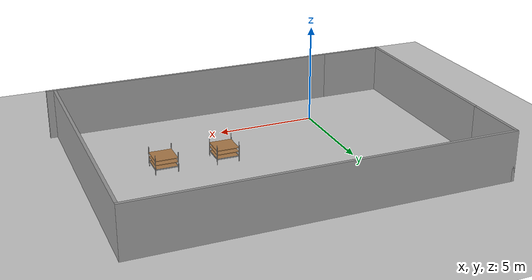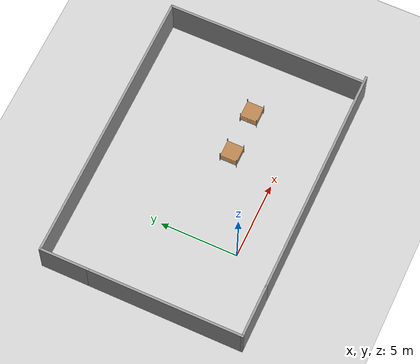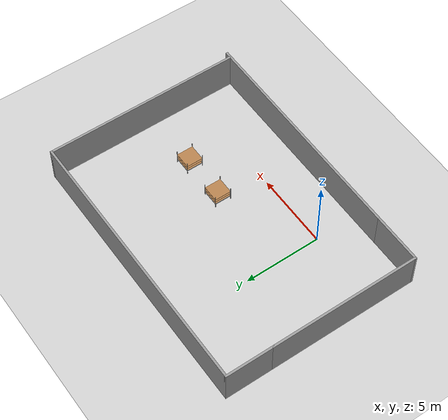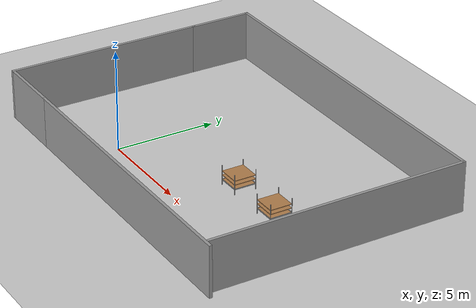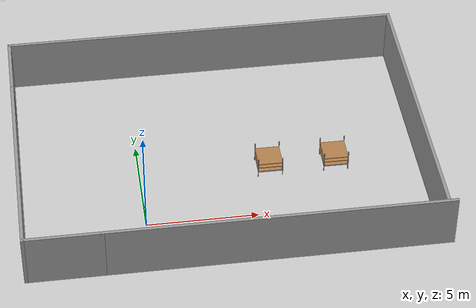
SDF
<sdf version="1.7">
 <world name="default">
  <model name="ground_plane">
   <static>1</static>
   <link name="link">
    <collision name="collision">
     <geometry><plane><normal>0 0 1</normal><size>100 100</size></plane></geometry>
     <surface><friction><ode><mu>100</mu><mu2>50</mu2></ode></friction></surface>
    </collision>
    <visual name="visual">
     <cast_shadows>0</cast_shadows>
     <geometry><plane><normal>0 0 1</normal><size>100 100</size></plane></geometry>
     <material>
      <script><uri>file://media/materials/scripts/gazebo.material</uri><name>Gazebo/Grey</name></script>
     </material>
    </visual>
   </link>
  </model>
  <model name="warehouse_pallet_modified_110_0_clone_3">
   <link name="warehouse_pallet::link">
    <pose>-0.115127 9.2e-05 0 0 -0 1.57</pose>
    <inertial>
     <inertia>
      <ixx>0.0267042</ixx>
      <ixy>0</ixy>
      <ixz>0</ixz>
      <iyy>0.0937875</iyy>
      <iyz>0</iyz>
      <izz>0.120417</izz>
     </inertia>
     <mass>0.5</mass>
    </inertial>
    <visual name="front_right_leg">
     <pose>0.55 -0.55 0.4 0 -0 0</pose>
     <geometry><cylinder><radius>0.02</radius><length>1</length></cylinder></geometry>
     <material>
      <script><uri>file://media/materials/scripts/gazebo.material</uri><name>Gazebo/Grey</name></script>
      <shader type="pixel"><normal_map>__default__</normal_map></shader>
      <ambient>0.3 0.3 0.3 1</ambient>
      <diffuse>0.7 0.7 0.7 1</diffuse>
      <specular>0.01 0.01 0.01 1</specular>
      <emissive>0 0 0 1</emissive>
     </material>
    </visual>
    <visual name="back_left_leg">
     <pose>-0.55 0.55 0.4 0 -0 0</pose>
     <geometry><cylinder><radius>0.02</radius><length>1</length></cylinder></geometry>
     <material>
      <script><uri>file://media/materials/scripts/gazebo.material</uri><name>Gazebo/Grey</name></script>
      <shader type="pixel"><normal_map>__default__</normal_map></shader>
      <ambient>0.3 0.3 0.3 1</ambient>
      <diffuse>0.7 0.7 0.7 1</diffuse>
      <specular>0.01 0.01 0.01 1</specular>
      <emissive>0 0 0 1</emissive>
     </material>
    </visual>
    <visual name="front_left_leg">
     <pose>0.55 0.55 0.4 0 -0 0</pose>
     <geometry><cylinder><radius>0.02</radius><length>1</length></cylinder></geometry>
     <material>
      <script><uri>file://media/materials/scripts/gazebo.material</uri><name>Gazebo/Grey</name></script>
      <shader type="pixel"><normal_map>__default__</normal_map></shader>
      <ambient>0.3 0.3 0.3 1</ambient>
      <diffuse>0.7 0.7 0.7 1</diffuse>
      <specular>0.01 0.01 0.01 1</specular>
      <emissive>0 0 0 1</emissive>
     </material>
    </visual>
    <visual name="visual1">
     <pose>0 0 0.165 0 -0 0</pose>
     <geometry><box><size>1.1 1.1 0.03</size></box></geometry>
     <material>
      <script><uri>file://media/materials/scripts/gazebo.material</uri><name>Gazebo/Wood</name></script>
      <shader type="pixel"><normal_map>__default__</normal_map></shader>
      <ambient>1 1 1 1</ambient>
      <diffuse>1 1 1 1</diffuse>
      <specular>0.2 0.2 0.2 1</specular>
      <emissive>0 0 0 1</emissive>
     </material>
    </visual>
    <visual name="holding2_visual">
     <pose>0 -0.55 0.175 0 -0 0</pose>
     <geometry><box><size>1.1 0.02 0.05</size></box></geometry>
     <material>
      <script><uri>file://media/materials/scripts/gazebo.material</uri><name>Gazebo/Grey</name></script>
      <shader type="pixel"><normal_map>__default__</normal_map></shader>
      <ambient>0.3 0.3 0.3 1</ambient>
      <diffuse>0.7 0.7 0.7 1</diffuse>
      <specular>0.01 0.01 0.01 1</specular>
      <emissive>0 0 0 1</emissive>
     </material>
    </visual>
    <visual name="visual2">
     <pose>0 0 0.4 0 -0 0</pose>
     <geometry><box><size>1.1 1.1 0.03</size></box></geometry>
     <material>
      <script><uri>file://media/materials/scripts/gazebo.material</uri><name>Gazebo/Wood</name></script>
      <shader type="pixel"><normal_map>__default__</normal_map></shader>
      <ambient>1 1 1 1</ambient>
      <diffuse>1 1 1 1</diffuse>
      <specular>0.2 0.2 0.2 1</specular>
      <emissive>0 0 0 1</emissive>
     </material>
    </visual>
    <visual name="holding4_visual">
     <pose>-0.55 0 0.175 0 -0 1.57</pose>
     <geometry><box><size>1.1 0.02 0.05</size></box></geometry>
     <material>
      <script><uri>file://media/materials/scripts/gazebo.material</uri><name>Gazebo/Grey</name></script>
      <shader type="pixel"><normal_map>__default__</normal_map></shader>
      <ambient>0.3 0.3 0.3 1</ambient>
      <diffuse>0.7 0.7 0.7 1</diffuse>
      <specular>0.01 0.01 0.01 1</specular>
      <emissive>0 0 0 1</emissive>
     </material>
    </visual>
    <visual name="holding1_visual">
     <pose>0 0.55 0.175 0 -0 0</pose>
     <geometry><box><size>1.1 0.02 0.05</size></box></geometry>
     <material>
      <script><uri>file://media/materials/scripts/gazebo.material</uri><name>Gazebo/Grey</name></script>
      <shader type="pixel"><normal_map>__default__</normal_map></shader>
      <ambient>0.3 0.3 0.3 1</ambient>
      <diffuse>0.7 0.7 0.7 1</diffuse>
      <specular>0.01 0.01 0.01 1</specular>
      <emissive>0 0 0 1</emissive>
     </material>
    </visual>
    <visual name="back_right_leg">
     <pose>-0.55 -0.55 0.4 0 -0 0</pose>
     <geometry><cylinder><radius>0.02</radius><length>1</length></cylinder></geometry>
     <material>
      <script><uri>file://media/materials/scripts/gazebo.material</uri><name>Gazebo/Grey</name></script>
      <shader type="pixel"><normal_map>__default__</normal_map></shader>
      <ambient>0.3 0.3 0.3 1</ambient>
      <diffuse>0.7 0.7 0.7 1</diffuse>
      <specular>0.01 0.01 0.01 1</specular>
      <emissive>0 0 0 1</emissive>
     </material>
    </visual>
    <visual name="visual3">
     <pose>0 0 0.6 0 -0 0</pose>
     <geometry><box><size>1.1 1.1 0.03</size></box></geometry>
     <material>
      <script><uri>file://media/materials/scripts/gazebo.material</uri><name>Gazebo/Wood</name></script>
      <shader type="pixel"><normal_map>__default__</normal_map></shader>
      <ambient>1 1 1 1</ambient>
      <diffuse>1 1 1 1</diffuse>
      <specular>0.2 0.2 0.2 1</specular>
      <emissive>0 0 0 1</emissive>
     </material>
    </visual>
    <visual name="holding3_visual">
     <pose>0.55 0 0.175 0 -0 1.57</pose>
     <geometry><box><size>1.1 0.02 0.05</size></box></geometry>
     <material>
      <script><uri>file://media/materials/scripts/gazebo.material</uri><name>Gazebo/Grey</name></script>
      <shader type="pixel"><normal_map>__default__</normal_map></shader>
      <ambient>0.3 0.3 0.3 1</ambient>
      <diffuse>0.7 0.7 0.7 1</diffuse>
      <specular>0.01 0.01 0.01 1</specular>
      <emissive>0 0 0 1</emissive>
     </material>
    </visual>
    <collision name="back_right_leg">
     <pose>-0.55 -0.55 0.4 0 -0 0</pose>
     <geometry><cylinder><radius>0.02</radius><length>1</length></cylinder></geometry>
     <surface>
      <friction>
       <ode><mu>1</mu><mu2>1</mu2><fdir1>0 0 0</fdir1><slip1>0</slip1><slip2>0</slip2></ode>
       <torsional>
        <coefficient>1</coefficient>
        <patch_radius>0</patch_radius>
        <surface_radius>0</surface_radius>
        <use_patch_radius>1</use_patch_radius>
        <ode><slip>0</slip></ode>
       </torsional>
      </friction>
      <bounce><restitution_coefficient>0</restitution_coefficient><threshold>1e+06</threshold></bounce>
      <contact>
       <collide_without_contact>0</collide_without_contact>
       <collide_without_contact_bitmask>1</collide_without_contact_bitmask>
       <collide_bitmask>1</collide_bitmask>
       <ode>
        <soft_cfm>0</soft_cfm>
        <soft_erp>0.2</soft_erp>
        <kp>1e+13</kp>
        <kd>1</kd>
        <max_vel>0.01</max_vel>
        <min_depth>0</min_depth>
       </ode>
       <bullet>
        <split_impulse>1</split_impulse>
        <split_impulse_penetration_threshold>-0.01</split_impulse_penetration_threshold>
        <soft_cfm>0</soft_cfm>
        <soft_erp>0.2</soft_erp>
        <kp>1e+13</kp>
        <kd>1</kd>
       </bullet>
      </contact>
     </surface>
    </collision>
    <collision name="holding2_collision">
     <pose>0 -0.55 0.175 0 -0 0</pose>
     <geometry><box><size>1.1 0.02 0.05</size></box></geometry>
     <surface>
      <friction>
       <ode><mu>1e+09</mu><mu2>1e+09</mu2><fdir1>0 0 0</fdir1><slip1>0</slip1><slip2>0</slip2></ode>
       <torsional>
        <coefficient>1</coefficient>
        <patch_radius>0</patch_radius>
        <surface_radius>0</surface_radius>
        <use_patch_radius>1</use_patch_radius>
        <ode><slip>0</slip></ode>
       </torsional>
      </friction>
      <bounce><restitution_coefficient>0</restitution_coefficient><threshold>1e+06</threshold></bounce>
      <contact>
       <collide_without_contact>0</collide_without_contact>
       <collide_without_contact_bitmask>1</collide_without_contact_bitmask>
       <collide_bitmask>1</collide_bitmask>
       <ode>
        <soft_cfm>0</soft_cfm>
        <soft_erp>0.2</soft_erp>
        <kp>1e+13</kp>
        <kd>1</kd>
        <max_vel>0.01</max_vel>
        <min_depth>0</min_depth>
       </ode>
       <bullet>
        <split_impulse>1</split_impulse>
        <split_impulse_penetration_threshold>-0.01</split_impulse_penetration_threshold>
        <soft_cfm>0</soft_cfm>
        <soft_erp>0.2</soft_erp>
        <kp>1e+13</kp>
        <kd>1</kd>
       </bullet>
      </contact>
     </surface>
    </collision>
    <collision name="holding4_collision">
     <pose>-0.55 0 0.175 0 -0 1.57</pose>
     <geometry><box><size>1.1 0.02 0.05</size></box></geometry>
     <surface>
      <friction>
       <ode><mu>1e+09</mu><mu2>1e+09</mu2><fdir1>0 0 0</fdir1><slip1>0</slip1><slip2>0</slip2></ode>
       <torsional>
        <coefficient>1</coefficient>
        <patch_radius>0</patch_radius>
        <surface_radius>0</surface_radius>
        <use_patch_radius>1</use_patch_radius>
        <ode><slip>0</slip></ode>
       </torsional>
      </friction>
      <bounce><restitution_coefficient>0</restitution_coefficient><threshold>1e+06</threshold></bounce>
      <contact>
       <collide_without_contact>0</collide_without_contact>
       <collide_without_contact_bitmask>1</collide_without_contact_bitmask>
       <collide_bitmask>1</collide_bitmask>
       <ode>
        <soft_cfm>0</soft_cfm>
        <soft_erp>0.2</soft_erp>
        <kp>1e+13</kp>
        <kd>1</kd>
        <max_vel>0.01</max_vel>
        <min_depth>0</min_depth>
       </ode>
       <bullet>
        <split_impulse>1</split_impulse>
        <split_impulse_penetration_threshold>-0.01</split_impulse_penetration_threshold>
        <soft_cfm>0</soft_cfm>
        <soft_erp>0.2</soft_erp>
        <kp>1e+13</kp>
        <kd>1</kd>
       </bullet>
      </contact>
     </surface>
    </collision>
    <collision name="front_right_leg">
     <pose>0.55 -0.55 0.4 0 -0 0</pose>
     <geometry><cylinder><radius>0.02</radius><length>1</length></cylinder></geometry>
     <surface>
      <friction>
       <ode><mu>1</mu><mu2>1.2</mu2><fdir1>0 0 0</fdir1><slip1>0</slip1><slip2>0</slip2></ode>
       <torsional>
        <coefficient>1</coefficient>
        <patch_radius>0</patch_radius>
        <surface_radius>0</surface_radius>
        <use_patch_radius>1</use_patch_radius>
        <ode><slip>0</slip></ode>
       </torsional>
      </friction>
      <bounce><restitution_coefficient>0</restitution_coefficient><threshold>1e+06</threshold></bounce>
      <contact>
       <collide_without_contact>0</collide_without_contact>
       <collide_without_contact_bitmask>1</collide_without_contact_bitmask>
       <collide_bitmask>1</collide_bitmask>
       <ode>
        <soft_cfm>0</soft_cfm>
        <soft_erp>0.2</soft_erp>
        <kp>1e+13</kp>
        <kd>1</kd>
        <max_vel>0.01</max_vel>
        <min_depth>0</min_depth>
       </ode>
       <bullet>
        <split_impulse>1</split_impulse>
        <split_impulse_penetration_threshold>-0.01</split_impulse_penetration_threshold>
        <soft_cfm>0</soft_cfm>
        <soft_erp>0.2</soft_erp>
        <kp>1e+13</kp>
        <kd>1</kd>
       </bullet>
      </contact>
     </surface>
    </collision>
    <collision name="surface3">
     <pose>0 0 0.6 0 -0 0</pose>
     <geometry><box><size>1.1 1.1 0.03</size></box></geometry>
     <surface>
      <friction>
       <ode><mu>2.5</mu><mu2>2.5</mu2><fdir1>0 0 0</fdir1><slip1>0</slip1><slip2>0</slip2></ode>
       <torsional>
        <coefficient>1</coefficient>
        <patch_radius>0</patch_radius>
        <surface_radius>0</surface_radius>
        <use_patch_radius>1</use_patch_radius>
        <ode><slip>0</slip></ode>
       </torsional>
      </friction>
      <bounce><restitution_coefficient>0</restitution_coefficient><threshold>1e+06</threshold></bounce>
      <contact>
       <collide_without_contact>0</collide_without_contact>
       <collide_without_contact_bitmask>1</collide_without_contact_bitmask>
       <collide_bitmask>1</collide_bitmask>
       <ode>
        <soft_cfm>0</soft_cfm>
        <soft_erp>0.2</soft_erp>
        <kp>1e+13</kp>
        <kd>1</kd>
        <max_vel>0.01</max_vel>
        <min_depth>0</min_depth>
       </ode>
       <bullet>
        <split_impulse>1</split_impulse>
        <split_impulse_penetration_threshold>-0.01</split_impulse_penetration_threshold>
        <soft_cfm>0</soft_cfm>
        <soft_erp>0.2</soft_erp>
        <kp>1e+13</kp>
        <kd>1</kd>
       </bullet>
      </contact>
     </surface>
    </collision>
    <collision name="surface1">
     <pose>0 0 0.165 0 -0 0</pose>
     <geometry><box><size>1.1 1.1 0.03</size></box></geometry>
     <surface>
      <friction>
       <ode><mu>20</mu><mu2>20</mu2><fdir1>0 0 0</fdir1><slip1>0</slip1><slip2>0</slip2></ode>
       <torsional>
        <coefficient>1</coefficient>
        <patch_radius>0</patch_radius>
        <surface_radius>0</surface_radius>
        <use_patch_radius>1</use_patch_radius>
        <ode><slip>0</slip></ode>
       </torsional>
      </friction>
      <bounce><restitution_coefficient>0</restitution_coefficient><threshold>1e+06</threshold></bounce>
      <contact>
       <collide_without_contact>0</collide_without_contact>
       <collide_without_contact_bitmask>1</collide_without_contact_bitmask>
       <collide_bitmask>1</collide_bitmask>
       <ode>
        <soft_cfm>0</soft_cfm>
        <soft_erp>0.2</soft_erp>
        <kp>1e+13</kp>
        <kd>1</kd>
        <max_vel>0.01</max_vel>
        <min_depth>0</min_depth>
       </ode>
       <bullet>
        <split_impulse>1</split_impulse>
        <split_impulse_penetration_threshold>-0.01</split_impulse_penetration_threshold>
        <soft_cfm>0</soft_cfm>
        <soft_erp>0.2</soft_erp>
        <kp>1e+13</kp>
        <kd>1</kd>
       </bullet>
      </contact>
     </surface>
    </collision>
    <collision name="holding1_collision">
     <pose>0 0.55 0.175 0 -0 0</pose>
     <geometry><box><size>1.1 0.02 0.05</size></box></geometry>
     <surface>
      <friction>
       <ode><mu>1e+09</mu><mu2>1e+09</mu2><fdir1>0 0 0</fdir1><slip1>0</slip1><slip2>0</slip2></ode>
       <torsional>
        <coefficient>1</coefficient>
        <patch_radius>0</patch_radius>
        <surface_radius>0</surface_radius>
        <use_patch_radius>1</use_patch_radius>
        <ode><slip>0</slip></ode>
       </torsional>
      </friction>
      <bounce><restitution_coefficient>0</restitution_coefficient><threshold>1e+06</threshold></bounce>
      <contact>
       <collide_without_contact>0</collide_without_contact>
       <collide_without_contact_bitmask>1</collide_without_contact_bitmask>
       <collide_bitmask>1</collide_bitmask>
       <ode>
        <soft_cfm>0</soft_cfm>
        <soft_erp>0.2</soft_erp>
        <kp>1e+13</kp>
        <kd>1</kd>
        <max_vel>0.01</max_vel>
        <min_depth>0</min_depth>
       </ode>
       <bullet>
        <split_impulse>1</split_impulse>
        <split_impulse_penetration_threshold>-0.01</split_impulse_penetration_threshold>
        <soft_cfm>0</soft_cfm>
        <soft_erp>0.2</soft_erp>
        <kp>1e+13</kp>
        <kd>1</kd>
       </bullet>
      </contact>
     </surface>
    </collision>
    <collision name="back_left_leg">
     <pose>-0.55 0.55 0.4 0 -0 0</pose>
     <geometry><cylinder><radius>0.02</radius><length>1</length></cylinder></geometry>
     <surface>
      <friction>
       <ode><mu>1</mu><mu2>1</mu2><fdir1>0 0 0</fdir1><slip1>0</slip1><slip2>0</slip2></ode>
       <torsional>
        <coefficient>1</coefficient>
        <patch_radius>0</patch_radius>
        <surface_radius>0</surface_radius>
        <use_patch_radius>1</use_patch_radius>
        <ode><slip>0</slip></ode>
       </torsional>
      </friction>
      <bounce><restitution_coefficient>0</restitution_coefficient><threshold>1e+06</threshold></bounce>
      <contact>
       <collide_without_contact>0</collide_without_contact>
       <collide_without_contact_bitmask>1</collide_without_contact_bitmask>
       <collide_bitmask>1</collide_bitmask>
       <ode>
        <soft_cfm>0</soft_cfm>
        <soft_erp>0.2</soft_erp>
        <kp>1e+13</kp>
        <kd>1</kd>
        <max_vel>0.01</max_vel>
        <min_depth>0</min_depth>
       </ode>
       <bullet>
        <split_impulse>1</split_impulse>
        <split_impulse_penetration_threshold>-0.01</split_impulse_penetration_threshold>
        <soft_cfm>0</soft_cfm>
        <soft_erp>0.2</soft_erp>
        <kp>1e+13</kp>
        <kd>1</kd>
       </bullet>
      </contact>
     </surface>
    </collision>
    <collision name="holding3_collision">
     <pose>0.55 0 0.175 0 -0 1.57</pose>
     <geometry><box><size>1.1 0.02 0.05</size></box></geometry>
     <surface>
      <friction>
       <ode><mu>1e+09</mu><mu2>1e+09</mu2><fdir1>0 0 0</fdir1><slip1>0</slip1><slip2>0</slip2></ode>
       <torsional>
        <coefficient>1</coefficient>
        <patch_radius>0</patch_radius>
        <surface_radius>0</surface_radius>
        <use_patch_radius>1</use_patch_radius>
        <ode><slip>0</slip></ode>
       </torsional>
      </friction>
      <bounce><restitution_coefficient>0</restitution_coefficient><threshold>1e+06</threshold></bounce>
      <contact>
       <collide_without_contact>0</collide_without_contact>
       <collide_without_contact_bitmask>1</collide_without_contact_bitmask>
       <collide_bitmask>1</collide_bitmask>
       <ode>
        <soft_cfm>0</soft_cfm>
        <soft_erp>0.2</soft_erp>
        <kp>1e+13</kp>
        <kd>1</kd>
        <max_vel>0.01</max_vel>
        <min_depth>0</min_depth>
       </ode>
       <bullet>
        <split_impulse>1</split_impulse>
        <split_impulse_penetration_threshold>-0.01</split_impulse_penetration_threshold>
        <soft_cfm>0</soft_cfm>
        <soft_erp>0.2</soft_erp>
        <kp>1e+13</kp>
        <kd>1</kd>
       </bullet>
      </contact>
     </surface>
    </collision>
    <collision name="surface2">
     <pose>0 0 0.4 0 -0 0</pose>
     <geometry><box><size>1.1 1.1 0.03</size></box></geometry>
     <surface>
      <friction>
       <ode><mu>2.5</mu><mu2>2.5</mu2><fdir1>0 0 0</fdir1><slip1>0</slip1><slip2>0</slip2></ode>
       <torsional>
        <coefficient>1</coefficient>
        <patch_radius>0</patch_radius>
        <surface_radius>0</surface_radius>
        <use_patch_radius>1</use_patch_radius>
        <ode><slip>0</slip></ode>
       </torsional>
      </friction>
      <bounce><restitution_coefficient>0</restitution_coefficient><threshold>1e+06</threshold></bounce>
      <contact>
       <collide_without_contact>0</collide_without_contact>
       <collide_without_contact_bitmask>1</collide_without_contact_bitmask>
       <collide_bitmask>1</collide_bitmask>
       <ode>
        <soft_cfm>0</soft_cfm>
        <soft_erp>0.2</soft_erp>
        <kp>1e+13</kp>
        <kd>1</kd>
        <max_vel>0.01</max_vel>
        <min_depth>0</min_depth>
       </ode>
       <bullet>
        <split_impulse>1</split_impulse>
        <split_impulse_penetration_threshold>-0.01</split_impulse_penetration_threshold>
        <soft_cfm>0</soft_cfm>
        <soft_erp>0.2</soft_erp>
        <kp>1e+13</kp>
        <kd>1</kd>
       </bullet>
      </contact>
     </surface>
    </collision>
    <collision name="front_left_leg">
     <pose>0.55 0.55 0.4 0 -0 0</pose>
     <geometry><cylinder><radius>0.02</radius><length>1</length></cylinder></geometry>
     <surface>
      <friction>
       <ode><mu>1</mu><mu2>1</mu2><fdir1>0 0 0</fdir1><slip1>0</slip1><slip2>0</slip2></ode>
       <torsional>
        <coefficient>1</coefficient>
        <patch_radius>0</patch_radius>
        <surface_radius>0</surface_radius>
        <use_patch_radius>1</use_patch_radius>
        <ode><slip>0</slip></ode>
       </torsional>
      </friction>
      <bounce><restitution_coefficient>0</restitution_coefficient><threshold>1e+06</threshold></bounce>
      <contact>
       <collide_without_contact>0</collide_without_contact>
       <collide_without_contact_bitmask>1</collide_without_contact_bitmask>
       <collide_bitmask>1</collide_bitmask>
       <ode>
        <soft_cfm>0</soft_cfm>
        <soft_erp>0.2</soft_erp>
        <kp>1e+13</kp>
        <kd>1</kd>
        <max_vel>0.01</max_vel>
        <min_depth>0</min_depth>
       </ode>
       <bullet>
        <split_impulse>1</split_impulse>
        <split_impulse_penetration_threshold>-0.01</split_impulse_penetration_threshold>
        <soft_cfm>0</soft_cfm>
        <soft_erp>0.2</soft_erp>
        <kp>1e+13</kp>
        <kd>1</kd>
       </bullet>
      </contact>
     </surface>
    </collision>
   </link>
   <static>0</static>
   <pose>6.00001 3.00109 0.09997 0 -6.9e-05 -7.5e-05</pose>
  </model>
  <model name="warehouse_pallet_modified_110_0_clone_4">
   <link name="warehouse_pallet::link">
    <pose>-0.115127 9.2e-05 0 0 -0 1.57</pose>
    <inertial>
     <inertia>
      <ixx>0.0267042</ixx>
      <ixy>0</ixy>
      <ixz>0</ixz>
      <iyy>0.0937875</iyy>
      <iyz>0</iyz>
      <izz>0.120417</izz>
     </inertia>
     <mass>0.5</mass>
    </inertial>
    <visual name="front_right_leg">
     <pose>0.55 -0.55 0.4 0 -0 0</pose>
     <geometry><cylinder><radius>0.02</radius><length>1</length></cylinder></geometry>
     <material>
      <script><uri>file://media/materials/scripts/gazebo.material</uri><name>Gazebo/Grey</name></script>
      <shader type="pixel"><normal_map>__default__</normal_map></shader>
      <ambient>0.3 0.3 0.3 1</ambient>
      <diffuse>0.7 0.7 0.7 1</diffuse>
      <specular>0.01 0.01 0.01 1</specular>
      <emissive>0 0 0 1</emissive>
     </material>
    </visual>
    <visual name="back_left_leg">
     <pose>-0.55 0.55 0.4 0 -0 0</pose>
     <geometry><cylinder><radius>0.02</radius><length>1</length></cylinder></geometry>
     <material>
      <script><uri>file://media/materials/scripts/gazebo.material</uri><name>Gazebo/Grey</name></script>
      <shader type="pixel"><normal_map>__default__</normal_map></shader>
      <ambient>0.3 0.3 0.3 1</ambient>
      <diffuse>0.7 0.7 0.7 1</diffuse>
      <specular>0.01 0.01 0.01 1</specular>
      <emissive>0 0 0 1</emissive>
     </material>
    </visual>
    <visual name="front_left_leg">
     <pose>0.55 0.55 0.4 0 -0 0</pose>
     <geometry><cylinder><radius>0.02</radius><length>1</length></cylinder></geometry>
     <material>
      <script><uri>file://media/materials/scripts/gazebo.material</uri><name>Gazebo/Grey</name></script>
      <shader type="pixel"><normal_map>__default__</normal_map></shader>
      <ambient>0.3 0.3 0.3 1</ambient>
      <diffuse>0.7 0.7 0.7 1</diffuse>
      <specular>0.01 0.01 0.01 1</specular>
      <emissive>0 0 0 1</emissive>
     </material>
    </visual>
    <visual name="visual1">
     <pose>0 0 0.165 0 -0 0</pose>
     <geometry><box><size>1.1 1.1 0.03</size></box></geometry>
     <material>
      <script><uri>file://media/materials/scripts/gazebo.material</uri><name>Gazebo/Wood</name></script>
      <shader type="pixel"><normal_map>__default__</normal_map></shader>
      <ambient>1 1 1 1</ambient>
      <diffuse>1 1 1 1</diffuse>
      <specular>0.2 0.2 0.2 1</specular>
      <emissive>0 0 0 1</emissive>
     </material>
    </visual>
    <visual name="holding2_visual">
     <pose>0 -0.55 0.175 0 -0 0</pose>
     <geometry><box><size>1.1 0.02 0.05</size></box></geometry>
     <material>
      <script><uri>file://media/materials/scripts/gazebo.material</uri><name>Gazebo/Grey</name></script>
      <shader type="pixel"><normal_map>__default__</normal_map></shader>
      <ambient>0.3 0.3 0.3 1</ambient>
      <diffuse>0.7 0.7 0.7 1</diffuse>
      <specular>0.01 0.01 0.01 1</specular>
      <emissive>0 0 0 1</emissive>
     </material>
    </visual>
    <visual name="visual2">
     <pose>0 0 0.4 0 -0 0</pose>
     <geometry><box><size>1.1 1.1 0.03</size></box></geometry>
     <material>
      <script><uri>file://media/materials/scripts/gazebo.material</uri><name>Gazebo/Wood</name></script>
      <shader type="pixel"><normal_map>__default__</normal_map></shader>
      <ambient>1 1 1 1</ambient>
      <diffuse>1 1 1 1</diffuse>
      <specular>0.2 0.2 0.2 1</specular>
      <emissive>0 0 0 1</emissive>
     </material>
    </visual>
    <visual name="holding4_visual">
     <pose>-0.55 0 0.175 0 -0 1.57</pose>
     <geometry><box><size>1.1 0.02 0.05</size></box></geometry>
     <material>
      <script><uri>file://media/materials/scripts/gazebo.material</uri><name>Gazebo/Grey</name></script>
      <shader type="pixel"><normal_map>__default__</normal_map></shader>
      <ambient>0.3 0.3 0.3 1</ambient>
      <diffuse>0.7 0.7 0.7 1</diffuse>
      <specular>0.01 0.01 0.01 1</specular>
      <emissive>0 0 0 1</emissive>
     </material>
    </visual>
    <visual name="holding1_visual">
     <pose>0 0.55 0.175 0 -0 0</pose>
     <geometry><box><size>1.1 0.02 0.05</size></box></geometry>
     <material>
      <script><uri>file://media/materials/scripts/gazebo.material</uri><name>Gazebo/Grey</name></script>
      <shader type="pixel"><normal_map>__default__</normal_map></shader>
      <ambient>0.3 0.3 0.3 1</ambient>
      <diffuse>0.7 0.7 0.7 1</diffuse>
      <specular>0.01 0.01 0.01 1</specular>
      <emissive>0 0 0 1</emissive>
     </material>
    </visual>
    <visual name="back_right_leg">
     <pose>-0.55 -0.55 0.4 0 -0 0</pose>
     <geometry><cylinder><radius>0.02</radius><length>1</length></cylinder></geometry>
     <material>
      <script><uri>file://media/materials/scripts/gazebo.material</uri><name>Gazebo/Grey</name></script>
      <shader type="pixel"><normal_map>__default__</normal_map></shader>
      <ambient>0.3 0.3 0.3 1</ambient>
      <diffuse>0.7 0.7 0.7 1</diffuse>
      <specular>0.01 0.01 0.01 1</specular>
      <emissive>0 0 0 1</emissive>
     </material>
    </visual>
    <visual name="visual3">
     <pose>0 0 0.6 0 -0 0</pose>
     <geometry><box><size>1.1 1.1 0.03</size></box></geometry>
     <material>
      <script><uri>file://media/materials/scripts/gazebo.material</uri><name>Gazebo/Wood</name></script>
      <shader type="pixel"><normal_map>__default__</normal_map></shader>
      <ambient>1 1 1 1</ambient>
      <diffuse>1 1 1 1</diffuse>
      <specular>0.2 0.2 0.2 1</specular>
      <emissive>0 0 0 1</emissive>
     </material>
    </visual>
    <visual name="holding3_visual">
     <pose>0.55 0 0.175 0 -0 1.57</pose>
     <geometry><box><size>1.1 0.02 0.05</size></box></geometry>
     <material>
      <script><uri>file://media/materials/scripts/gazebo.material</uri><name>Gazebo/Grey</name></script>
      <shader type="pixel"><normal_map>__default__</normal_map></shader>
      <ambient>0.3 0.3 0.3 1</ambient>
      <diffuse>0.7 0.7 0.7 1</diffuse>
      <specular>0.01 0.01 0.01 1</specular>
      <emissive>0 0 0 1</emissive>
     </material>
    </visual>
    <collision name="back_right_leg">
     <pose>-0.55 -0.55 0.4 0 -0 0</pose>
     <geometry><cylinder><radius>0.02</radius><length>1</length></cylinder></geometry>
     <surface>
      <friction>
       <ode><mu>1</mu><mu2>1</mu2><fdir1>0 0 0</fdir1><slip1>0</slip1><slip2>0</slip2></ode>
       <torsional>
        <coefficient>1</coefficient>
        <patch_radius>0</patch_radius>
        <surface_radius>0</surface_radius>
        <use_patch_radius>1</use_patch_radius>
        <ode><slip>0</slip></ode>
       </torsional>
      </friction>
      <bounce><restitution_coefficient>0</restitution_coefficient><threshold>1e+06</threshold></bounce>
      <contact>
       <collide_without_contact>0</collide_without_contact>
       <collide_without_contact_bitmask>1</collide_without_contact_bitmask>
       <collide_bitmask>1</collide_bitmask>
       <ode>
        <soft_cfm>0</soft_cfm>
        <soft_erp>0.2</soft_erp>
        <kp>1e+13</kp>
        <kd>1</kd>
        <max_vel>0.01</max_vel>
        <min_depth>0</min_depth>
       </ode>
       <bullet>
        <split_impulse>1</split_impulse>
        <split_impulse_penetration_threshold>-0.01</split_impulse_penetration_threshold>
        <soft_cfm>0</soft_cfm>
        <soft_erp>0.2</soft_erp>
        <kp>1e+13</kp>
        <kd>1</kd>
       </bullet>
      </contact>
     </surface>
    </collision>
    <collision name="holding2_collision">
     <pose>0 -0.55 0.175 0 -0 0</pose>
     <geometry><box><size>1.1 0.02 0.05</size></box></geometry>
     <surface>
      <friction>
       <ode><mu>1e+09</mu><mu2>1e+09</mu2><fdir1>0 0 0</fdir1><slip1>0</slip1><slip2>0</slip2></ode>
       <torsional>
        <coefficient>1</coefficient>
        <patch_radius>0</patch_radius>
        <surface_radius>0</surface_radius>
        <use_patch_radius>1</use_patch_radius>
        <ode><slip>0</slip></ode>
       </torsional>
      </friction>
      <bounce><restitution_coefficient>0</restitution_coefficient><threshold>1e+06</threshold></bounce>
      <contact>
       <collide_without_contact>0</collide_without_contact>
       <collide_without_contact_bitmask>1</collide_without_contact_bitmask>
       <collide_bitmask>1</collide_bitmask>
       <ode>
        <soft_cfm>0</soft_cfm>
        <soft_erp>0.2</soft_erp>
        <kp>1e+13</kp>
        <kd>1</kd>
        <max_vel>0.01</max_vel>
        <min_depth>0</min_depth>
       </ode>
       <bullet>
        <split_impulse>1</split_impulse>
        <split_impulse_penetration_threshold>-0.01</split_impulse_penetration_threshold>
        <soft_cfm>0</soft_cfm>
        <soft_erp>0.2</soft_erp>
        <kp>1e+13</kp>
        <kd>1</kd>
       </bullet>
      </contact>
     </surface>
    </collision>
    <collision name="holding4_collision">
     <pose>-0.55 0 0.175 0 -0 1.57</pose>
     <geometry><box><size>1.1 0.02 0.05</size></box></geometry>
     <surface>
      <friction>
       <ode><mu>1e+09</mu><mu2>1e+09</mu2><fdir1>0 0 0</fdir1><slip1>0</slip1><slip2>0</slip2></ode>
       <torsional>
        <coefficient>1</coefficient>
        <patch_radius>0</patch_radius>
        <surface_radius>0</surface_radius>
        <use_patch_radius>1</use_patch_radius>
        <ode><slip>0</slip></ode>
       </torsional>
      </friction>
      <bounce><restitution_coefficient>0</restitution_coefficient><threshold>1e+06</threshold></bounce>
      <contact>
       <collide_without_contact>0</collide_without_contact>
       <collide_without_contact_bitmask>1</collide_without_contact_bitmask>
       <collide_bitmask>1</collide_bitmask>
       <ode>
        <soft_cfm>0</soft_cfm>
        <soft_erp>0.2</soft_erp>
        <kp>1e+13</kp>
        <kd>1</kd>
        <max_vel>0.01</max_vel>
        <min_depth>0</min_depth>
       </ode>
       <bullet>
        <split_impulse>1</split_impulse>
        <split_impulse_penetration_threshold>-0.01</split_impulse_penetration_threshold>
        <soft_cfm>0</soft_cfm>
        <soft_erp>0.2</soft_erp>
        <kp>1e+13</kp>
        <kd>1</kd>
       </bullet>
      </contact>
     </surface>
    </collision>
    <collision name="front_right_leg">
     <pose>0.55 -0.55 0.4 0 -0 0</pose>
     <geometry><cylinder><radius>0.02</radius><length>1</length></cylinder></geometry>
     <surface>
      <friction>
       <ode><mu>1</mu><mu2>1.2</mu2><fdir1>0 0 0</fdir1><slip1>0</slip1><slip2>0</slip2></ode>
       <torsional>
        <coefficient>1</coefficient>
        <patch_radius>0</patch_radius>
        <surface_radius>0</surface_radius>
        <use_patch_radius>1</use_patch_radius>
        <ode><slip>0</slip></ode>
       </torsional>
      </friction>
      <bounce><restitution_coefficient>0</restitution_coefficient><threshold>1e+06</threshold></bounce>
      <contact>
       <collide_without_contact>0</collide_without_contact>
       <collide_without_contact_bitmask>1</collide_without_contact_bitmask>
       <collide_bitmask>1</collide_bitmask>
       <ode>
        <soft_cfm>0</soft_cfm>
        <soft_erp>0.2</soft_erp>
        <kp>1e+13</kp>
        <kd>1</kd>
        <max_vel>0.01</max_vel>
        <min_depth>0</min_depth>
       </ode>
       <bullet>
        <split_impulse>1</split_impulse>
        <split_impulse_penetration_threshold>-0.01</split_impulse_penetration_threshold>
        <soft_cfm>0</soft_cfm>
        <soft_erp>0.2</soft_erp>
        <kp>1e+13</kp>
        <kd>1</kd>
       </bullet>
      </contact>
     </surface>
    </collision>
    <collision name="surface3">
     <pose>0 0 0.6 0 -0 0</pose>
     <geometry><box><size>1.1 1.1 0.03</size></box></geometry>
     <surface>
      <friction>
       <ode><mu>2.5</mu><mu2>2.5</mu2><fdir1>0 0 0</fdir1><slip1>0</slip1><slip2>0</slip2></ode>
       <torsional>
        <coefficient>1</coefficient>
        <patch_radius>0</patch_radius>
        <surface_radius>0</surface_radius>
        <use_patch_radius>1</use_patch_radius>
        <ode><slip>0</slip></ode>
       </torsional>
      </friction>
      <bounce><restitution_coefficient>0</restitution_coefficient><threshold>1e+06</threshold></bounce>
      <contact>
       <collide_without_contact>0</collide_without_contact>
       <collide_without_contact_bitmask>1</collide_without_contact_bitmask>
       <collide_bitmask>1</collide_bitmask>
       <ode>
        <soft_cfm>0</soft_cfm>
        <soft_erp>0.2</soft_erp>
        <kp>1e+13</kp>
        <kd>1</kd>
        <max_vel>0.01</max_vel>
        <min_depth>0</min_depth>
       </ode>
       <bullet>
        <split_impulse>1</split_impulse>
        <split_impulse_penetration_threshold>-0.01</split_impulse_penetration_threshold>
        <soft_cfm>0</soft_cfm>
        <soft_erp>0.2</soft_erp>
        <kp>1e+13</kp>
        <kd>1</kd>
       </bullet>
      </contact>
     </surface>
    </collision>
    <collision name="surface1">
     <pose>0 0 0.165 0 -0 0</pose>
     <geometry><box><size>1.1 1.1 0.03</size></box></geometry>
     <surface>
      <friction>
       <ode><mu>20</mu><mu2>20</mu2><fdir1>0 0 0</fdir1><slip1>0</slip1><slip2>0</slip2></ode>
       <torsional>
        <coefficient>1</coefficient>
        <patch_radius>0</patch_radius>
        <surface_radius>0</surface_radius>
        <use_patch_radius>1</use_patch_radius>
        <ode><slip>0</slip></ode>
       </torsional>
      </friction>
      <bounce><restitution_coefficient>0</restitution_coefficient><threshold>1e+06</threshold></bounce>
      <contact>
       <collide_without_contact>0</collide_without_contact>
       <collide_without_contact_bitmask>1</collide_without_contact_bitmask>
       <collide_bitmask>1</collide_bitmask>
       <ode>
        <soft_cfm>0</soft_cfm>
        <soft_erp>0.2</soft_erp>
        <kp>1e+13</kp>
        <kd>1</kd>
        <max_vel>0.01</max_vel>
        <min_depth>0</min_depth>
       </ode>
       <bullet>
        <split_impulse>1</split_impulse>
        <split_impulse_penetration_threshold>-0.01</split_impulse_penetration_threshold>
        <soft_cfm>0</soft_cfm>
        <soft_erp>0.2</soft_erp>
        <kp>1e+13</kp>
        <kd>1</kd>
       </bullet>
      </contact>
     </surface>
    </collision>
    <collision name="holding1_collision">
     <pose>0 0.55 0.175 0 -0 0</pose>
     <geometry><box><size>1.1 0.02 0.05</size></box></geometry>
     <surface>
      <friction>
       <ode><mu>1e+09</mu><mu2>1e+09</mu2><fdir1>0 0 0</fdir1><slip1>0</slip1><slip2>0</slip2></ode>
       <torsional>
        <coefficient>1</coefficient>
        <patch_radius>0</patch_radius>
        <surface_radius>0</surface_radius>
        <use_patch_radius>1</use_patch_radius>
        <ode><slip>0</slip></ode>
       </torsional>
      </friction>
      <bounce><restitution_coefficient>0</restitution_coefficient><threshold>1e+06</threshold></bounce>
      <contact>
       <collide_without_contact>0</collide_without_contact>
       <collide_without_contact_bitmask>1</collide_without_contact_bitmask>
       <collide_bitmask>1</collide_bitmask>
       <ode>
        <soft_cfm>0</soft_cfm>
        <soft_erp>0.2</soft_erp>
        <kp>1e+13</kp>
        <kd>1</kd>
        <max_vel>0.01</max_vel>
        <min_depth>0</min_depth>
       </ode>
       <bullet>
        <split_impulse>1</split_impulse>
        <split_impulse_penetration_threshold>-0.01</split_impulse_penetration_threshold>
        <soft_cfm>0</soft_cfm>
        <soft_erp>0.2</soft_erp>
        <kp>1e+13</kp>
        <kd>1</kd>
       </bullet>
      </contact>
     </surface>
    </collision>
    <collision name="back_left_leg">
     <pose>-0.55 0.55 0.4 0 -0 0</pose>
     <geometry><cylinder><radius>0.02</radius><length>1</length></cylinder></geometry>
     <surface>
      <friction>
       <ode><mu>1</mu><mu2>1</mu2><fdir1>0 0 0</fdir1><slip1>0</slip1><slip2>0</slip2></ode>
       <torsional>
        <coefficient>1</coefficient>
        <patch_radius>0</patch_radius>
        <surface_radius>0</surface_radius>
        <use_patch_radius>1</use_patch_radius>
        <ode><slip>0</slip></ode>
       </torsional>
      </friction>
      <bounce><restitution_coefficient>0</restitution_coefficient><threshold>1e+06</threshold></bounce>
      <contact>
       <collide_without_contact>0</collide_without_contact>
       <collide_without_contact_bitmask>1</collide_without_contact_bitmask>
       <collide_bitmask>1</collide_bitmask>
       <ode>
        <soft_cfm>0</soft_cfm>
        <soft_erp>0.2</soft_erp>
        <kp>1e+13</kp>
        <kd>1</kd>
        <max_vel>0.01</max_vel>
        <min_depth>0</min_depth>
       </ode>
       <bullet>
        <split_impulse>1</split_impulse>
        <split_impulse_penetration_threshold>-0.01</split_impulse_penetration_threshold>
        <soft_cfm>0</soft_cfm>
        <soft_erp>0.2</soft_erp>
        <kp>1e+13</kp>
        <kd>1</kd>
       </bullet>
      </contact>
     </surface>
    </collision>
    <collision name="holding3_collision">
     <pose>0.55 0 0.175 0 -0 1.57</pose>
     <geometry><box><size>1.1 0.02 0.05</size></box></geometry>
     <surface>
      <friction>
       <ode><mu>1e+09</mu><mu2>1e+09</mu2><fdir1>0 0 0</fdir1><slip1>0</slip1><slip2>0</slip2></ode>
       <torsional>
        <coefficient>1</coefficient>
        <patch_radius>0</patch_radius>
        <surface_radius>0</surface_radius>
        <use_patch_radius>1</use_patch_radius>
        <ode><slip>0</slip></ode>
       </torsional>
      </friction>
      <bounce><restitution_coefficient>0</restitution_coefficient><threshold>1e+06</threshold></bounce>
      <contact>
       <collide_without_contact>0</collide_without_contact>
       <collide_without_contact_bitmask>1</collide_without_contact_bitmask>
       <collide_bitmask>1</collide_bitmask>
       <ode>
        <soft_cfm>0</soft_cfm>
        <soft_erp>0.2</soft_erp>
        <kp>1e+13</kp>
        <kd>1</kd>
        <max_vel>0.01</max_vel>
        <min_depth>0</min_depth>
       </ode>
       <bullet>
        <split_impulse>1</split_impulse>
        <split_impulse_penetration_threshold>-0.01</split_impulse_penetration_threshold>
        <soft_cfm>0</soft_cfm>
        <soft_erp>0.2</soft_erp>
        <kp>1e+13</kp>
        <kd>1</kd>
       </bullet>
      </contact>
     </surface>
    </collision>
    <collision name="surface2">
     <pose>0 0 0.4 0 -0 0</pose>
     <geometry><box><size>1.1 1.1 0.03</size></box></geometry>
     <surface>
      <friction>
       <ode><mu>2.5</mu><mu2>2.5</mu2><fdir1>0 0 0</fdir1><slip1>0</slip1><slip2>0</slip2></ode>
       <torsional>
        <coefficient>1</coefficient>
        <patch_radius>0</patch_radius>
        <surface_radius>0</surface_radius>
        <use_patch_radius>1</use_patch_radius>
        <ode><slip>0</slip></ode>
       </torsional>
      </friction>
      <bounce><restitution_coefficient>0</restitution_coefficient><threshold>1e+06</threshold></bounce>
      <contact>
       <collide_without_contact>0</collide_without_contact>
       <collide_without_contact_bitmask>1</collide_without_contact_bitmask>
       <collide_bitmask>1</collide_bitmask>
       <ode>
        <soft_cfm>0</soft_cfm>
        <soft_erp>0.2</soft_erp>
        <kp>1e+13</kp>
        <kd>1</kd>
        <max_vel>0.01</max_vel>
        <min_depth>0</min_depth>
       </ode>
       <bullet>
        <split_impulse>1</split_impulse>
        <split_impulse_penetration_threshold>-0.01</split_impulse_penetration_threshold>
        <soft_cfm>0</soft_cfm>
        <soft_erp>0.2</soft_erp>
        <kp>1e+13</kp>
        <kd>1</kd>
       </bullet>
      </contact>
     </surface>
    </collision>
    <collision name="front_left_leg">
     <pose>0.55 0.55 0.4 0 -0 0</pose>
     <geometry><cylinder><radius>0.02</radius><length>1</length></cylinder></geometry>
     <surface>
      <friction>
       <ode><mu>1</mu><mu2>1</mu2><fdir1>0 0 0</fdir1><slip1>0</slip1><slip2>0</slip2></ode>
       <torsional>
        <coefficient>1</coefficient>
        <patch_radius>0</patch_radius>
        <surface_radius>0</surface_radius>
        <use_patch_radius>1</use_patch_radius>
        <ode><slip>0</slip></ode>
       </torsional>
      </friction>
      <bounce><restitution_coefficient>0</restitution_coefficient><threshold>1e+06</threshold></bounce>
      <contact>
       <collide_without_contact>0</collide_without_contact>
       <collide_without_contact_bitmask>1</collide_without_contact_bitmask>
       <collide_bitmask>1</collide_bitmask>
       <ode>
        <soft_cfm>0</soft_cfm>
        <soft_erp>0.2</soft_erp>
        <kp>1e+13</kp>
        <kd>1</kd>
        <max_vel>0.01</max_vel>
        <min_depth>0</min_depth>
       </ode>
       <bullet>
        <split_impulse>1</split_impulse>
        <split_impulse_penetration_threshold>-0.01</split_impulse_penetration_threshold>
        <soft_cfm>0</soft_cfm>
        <soft_erp>0.2</soft_erp>
        <kp>1e+13</kp>
        <kd>1</kd>
       </bullet>
      </contact>
     </surface>
    </collision>
   </link>
   <static>0</static>
   <pose>9.00003 3.00125 0.099954 -0 7e-05 -8.7e-05</pose>
  </model>
  <model name="warehouse">
   <pose>3.85808 3.76237 0 0 -0 0</pose>
   <link name="Wall_0">
    <collision name="Wall_0_Collision">
     <geometry><box><size>15.25 0.15 2.5</size></box></geometry>
     <pose>0 0 1.25 0 -0 0</pose>
    </collision>
    <visual name="Wall_0_Visual">
     <pose>0 0 1.25 0 -0 0</pose>
     <geometry><box><size>15.25 0.15 2.5</size></box></geometry>
     <material>
      <script><uri>file://media/materials/scripts/gazebo.material</uri><name>Gazebo/Grey</name></script>
      <ambient>1 1 1 1</ambient>
     </material>
     <meta><layer>0</layer></meta>
    </visual>
    <pose>1.675 -6.475 0 0 -0 0</pose>
   </link>
   <link name="Wall_2">
    <collision name="Wall_2_Collision">
     <geometry><box><size>3.5 0.15 2.5</size></box></geometry>
     <pose>0 0 1.25 0 -0 0</pose>
    </collision>
    <visual name="Wall_2_Visual">
     <pose>0 0 1.25 0 -0 0</pose>
     <geometry><box><size>3.5 0.15 2.5</size></box></geometry>
     <material>
      <script><uri>file://media/materials/scripts/gazebo.material</uri><name>Gazebo/Grey</name></script>
      <ambient>1 1 1 1</ambient>
     </material>
     <meta><layer>0</layer></meta>
    </visual>
    <pose>-7.55 -6.475 0 0 -0 3.14159</pose>
   </link>
   <link name="Wall_3">
    <collision name="Wall_3_Collision">
     <geometry><box><size>10 0.15 2.5</size></box></geometry>
     <pose>0 0 1.25 0 -0 0</pose>
    </collision>
    <visual name="Wall_3_Visual">
     <pose>0 0 1.25 0 -0 0</pose>
     <geometry><box><size>10 0.15 2.5</size></box></geometry>
     <material>
      <script><uri>file://media/materials/scripts/gazebo.material</uri><name>Gazebo/Grey</name></script>
      <ambient>1 1 1 1</ambient>
     </material>
     <meta><layer>0</layer></meta>
    </visual>
    <pose>-9.225 -1.55 0 0 -0 1.5708</pose>
   </link>
   <link name="Wall_7">
    <collision name="Wall_7_Collision">
     <geometry><box><size>3.25 0.15 2.5</size></box></geometry>
     <pose>0 0 1.25 0 -0 0</pose>
    </collision>
    <visual name="Wall_7_Visual">
     <pose>0 0 1.25 0 -0 0</pose>
     <geometry><box><size>3.25 0.15 2.5</size></box></geometry>
     <material>
      <script><uri>file://media/materials/scripts/gazebo.material</uri><name>Gazebo/Grey</name></script>
      <ambient>1 1 1 1</ambient>
     </material>
     <meta><layer>0</layer></meta>
    </visual>
    <pose>-9.225 4.925 0 0 -0 1.5708</pose>
   </link>
   <link name="Wall_8">
    <collision name="Wall_8_Collision">
     <geometry><box><size>18.25 0.15 2.5</size></box></geometry>
     <pose>0 0 1.25 0 -0 0</pose>
    </collision>
    <visual name="Wall_8_Visual">
     <pose>0 0 1.25 0 -0 0</pose>
     <geometry><box><size>18.25 0.15 2.5</size></box></geometry>
     <material>
      <script><uri>file://media/materials/scripts/gazebo.material</uri><name>Gazebo/Grey</name></script>
      <ambient>1 1 1 1</ambient>
     </material>
     <meta><layer>0</layer></meta>
    </visual>
    <pose>-0.175 6.475 0 0 -0 0</pose>
   </link>
   <link name="Wall_9">
    <collision name="Wall_9_Collision">
     <geometry><box><size>13 0.15 2.5</size></box></geometry>
     <pose>0 0 1.25 0 -0 0</pose>
    </collision>
    <visual name="Wall_9_Visual">
     <pose>0 0 1.25 0 -0 0</pose>
     <geometry><box><size>13 0.15 2.5</size></box></geometry>
     <material>
      <script><uri>file://media/materials/scripts/gazebo.material</uri><name>Gazebo/Grey</name></script>
      <ambient>1 1 1 1</ambient>
     </material>
     <meta><layer>0</layer></meta>
    </visual>
    <pose>8.875 0.05 0 0 -0 -1.5708</pose>
   </link>
   <static>1</static>
  </model>
 </world>
</sdf>
